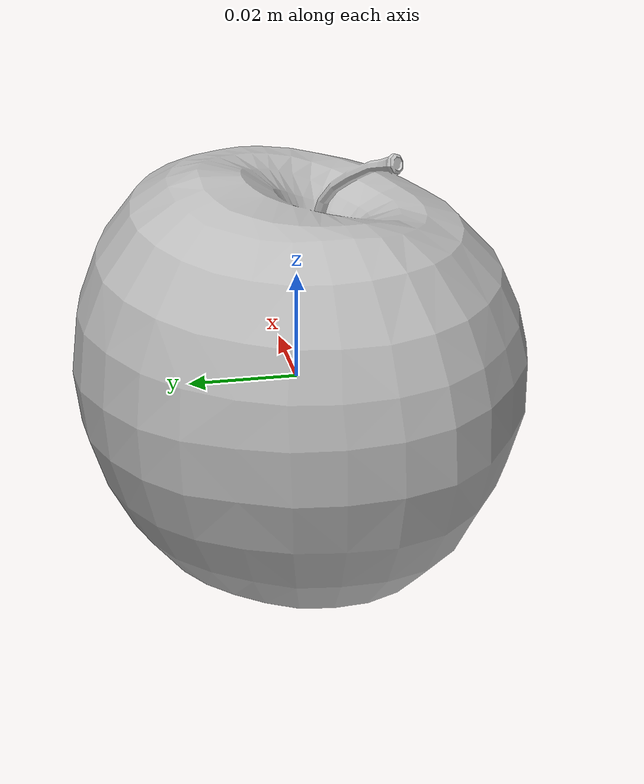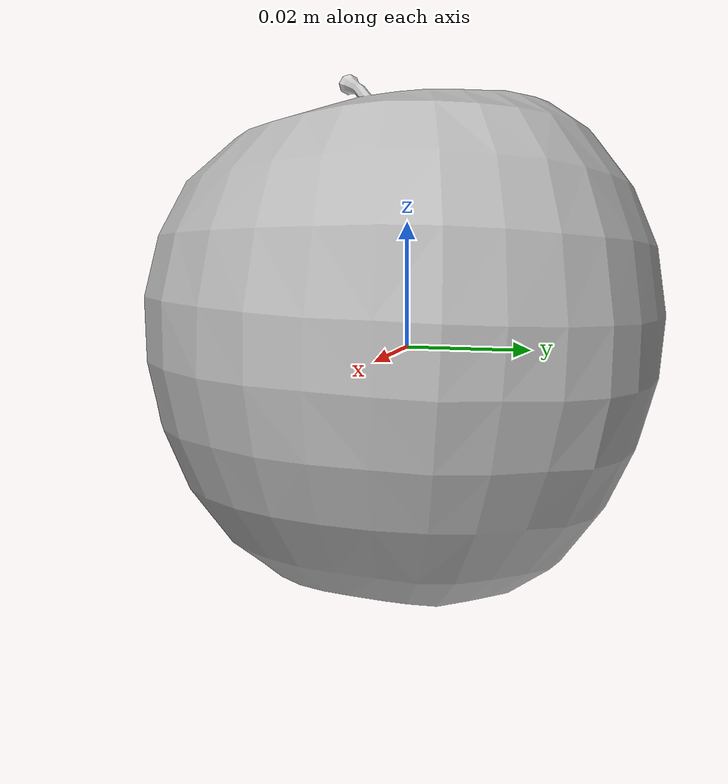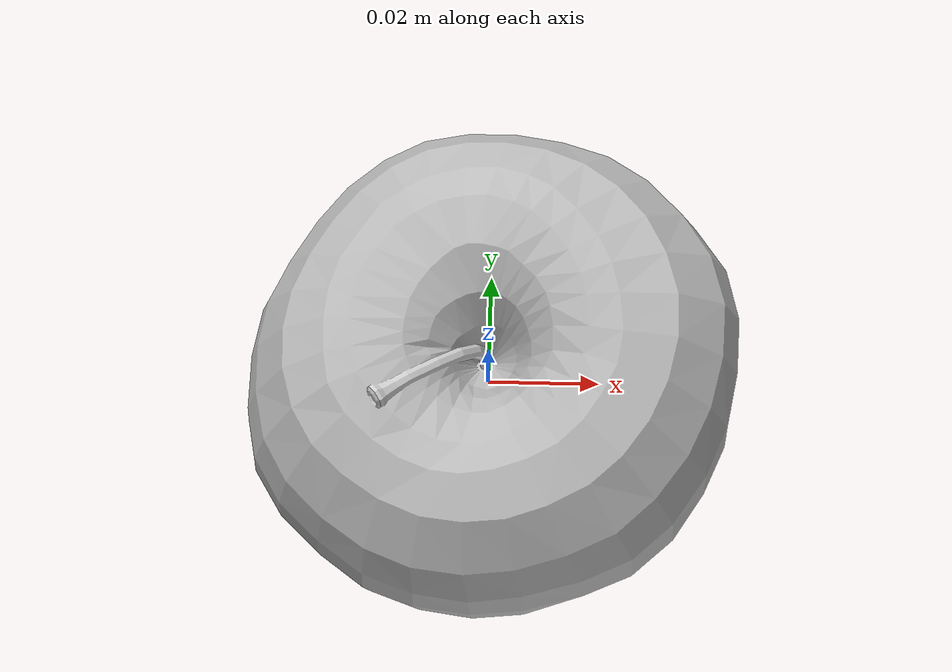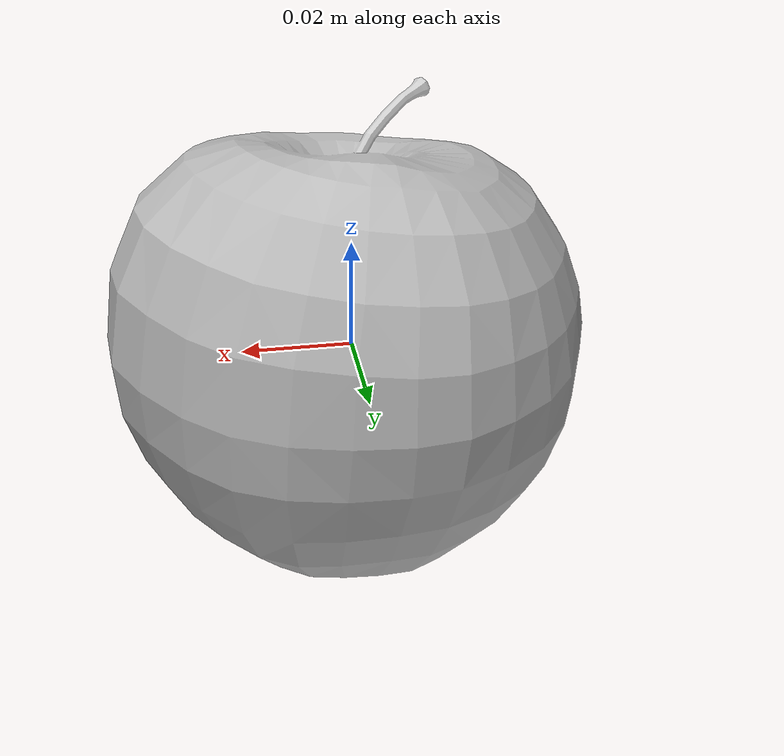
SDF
<?xml version="1.0" ?>
<sdf version='1.4'>
  <model name="standard_apple">
      <static>0</static>
      <link name='link'>
        <inertial>
          <pose>0.000000 0.000000 0.0 0.000000 0.000000 0.000000</pose>
          <mass>0.2</mass>
          <inertia>
            <ixx>0.0139619402497</ixx>
            <ixy>0.000000</ixy>
            <ixz>0.000000</ixz>
            <iyy>0.0139619402497</iyy>
            <iyz>0.000000</iyz>
            <izz>0.0139619402497</izz>
          </inertia>
        </inertial>
        <collision name='collision'>
          <geometry>
            <mesh>
              <uri>model://standard_apple/meshes/apple_simple.dae</uri>
              <scale>1 1 1</scale>
            </mesh>
          </geometry>
          <surface>
            <friction>
              <ode>
                <mu>30.0</mu>
                <mu2>30.0</mu2>
              </ode>
            </friction>
            <contact>
              <ode>
                <kp>1000000.0</kp>
                <kd>100.0</kd>
                <max_vel>1.0</max_vel>
                <min_depth>0.002</min_depth>
              </ode>
            </contact>
          </surface>
        </collision>
        <visual name='visual'>
          <geometry>
            <mesh>
              <uri>model://standard_apple/meshes/apple_simple.dae</uri>
              <scale>1 1 1</scale>
            </mesh>
          </geometry>

        </visual>
        <velocity_decay>
          <linear>0.000000</linear>
          <angular>0.000000</angular>
        </velocity_decay>
        <self_collide>0</self_collide>
        <kinematic>0</kinematic>
        <gravity>1</gravity>
      </link>
  </model>
</sdf>
